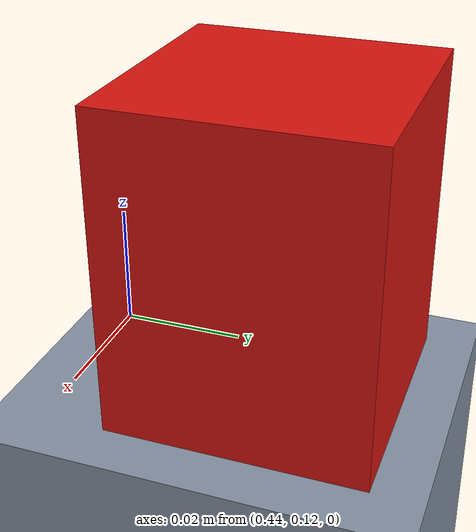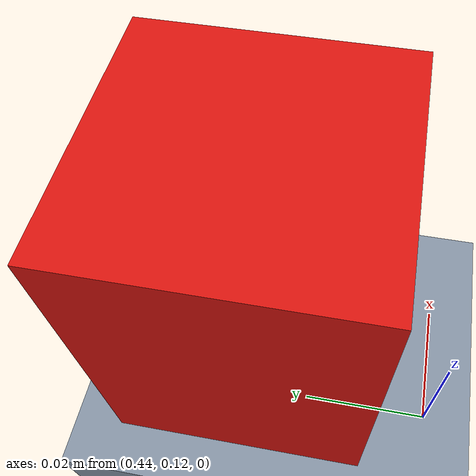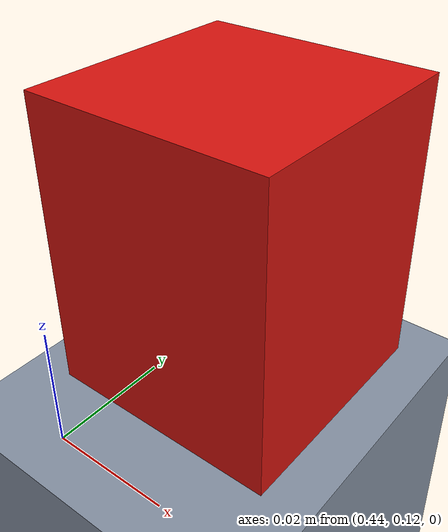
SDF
<?xml version="1.0" ?>
<sdf version="1.9">
  <world name="cloudgrasp">
    <physics name="physics" type="ignored">
      <max_step_size>0.001</max_step_size>
      <real_time_factor>1.0</real_time_factor>
    </physics>
    <plugin filename="gz-sim-physics-system" name="gz::sim::systems::Physics"/>
    <plugin filename="gz-sim-user-commands-system" name="gz::sim::systems::UserCommands"/>
    <plugin filename="gz-sim-scene-broadcaster-system" name="gz::sim::systems::SceneBroadcaster"/>
    <plugin filename="gz-sim-sensors-system" name="gz::sim::systems::Sensors">
      <render_engine>ogre2</render_engine>
    </plugin>
    <scene>
      <ambient>0.7 0.7 0.7 1</ambient>
      <background>0.15 0.18 0.23 1</background>
      <shadows>false</shadows>
    </scene>
    <light name="sun" type="directional">
      <pose>0 0 5 0 0 0</pose>
      <diffuse>0.8 0.8 0.8 1</diffuse>
      <direction>-0.4 0.2 -1</direction>
    </light>
    <model name="table">
      <static>true</static>
      <link name="link">
        <pose>0.25 0 -0.035 0 0 0</pose>
        <collision name="collision">
          <geometry>
            <box>
              <size>1.7 1.5 0.07</size>
            </box>
          </geometry>
        </collision>
        <visual name="visual">
          <geometry>
            <box>
              <size>1.7 1.5 0.07</size>
            </box>
          </geometry>
          <material>
            <ambient>0.52 0.57 0.64 1</ambient>
            <diffuse>0.52 0.57 0.64 1</diffuse>
          </material>
        </visual>
      </link>
    </model>
    <model name="target_cube">
      <pose>0.45 0.15 0.025 0 0 0</pose>
      <link name="link">
        <inertial>
          <mass>0.04</mass>
          <inertia>
            <ixx>0.000015</ixx>
            <iyy>0.000015</iyy>
            <izz>0.000015</izz>
          </inertia>
        </inertial>
        <collision name="collision">
          <geometry>
            <box>
              <size>0.04 0.04 0.05</size>
            </box>
          </geometry>
          <surface>
            <friction>
              <ode>
                <mu>2</mu>
                <mu2>2</mu2>
              </ode>
            </friction>
          </surface>
        </collision>
        <visual name="visual">
          <geometry>
            <box>
              <size>0.04 0.04 0.05</size>
            </box>
          </geometry>
          <material>
            <ambient>0.85 0.08 0.06 1</ambient>
            <diffuse>0.85 0.08 0.06 1</diffuse>
          </material>
        </visual>
      </link>
    </model>
    <model name="camera">
      <static>true</static>
      <pose>0.45 0.05 1.1 0 1.57079632679 0</pose>
      <link name="link">
        <sensor name="rgbd" type="rgbd_camera">
          <always_on>true</always_on>
          <update_rate>10</update_rate>
          <topic>/camera</topic>
          <gz_frame_id>camera_link</gz_frame_id>
          <camera>
            <horizontal_fov>0.85</horizontal_fov>
            <image>
              <width>320</width>
              <height>240</height>
              <format>R8G8B8</format>
            </image>
            <clip>
              <near>0.05</near>
              <far>2.0</far>
            </clip>
          </camera>
        </sensor>
      </link>
    </model>
  </world>
</sdf>
